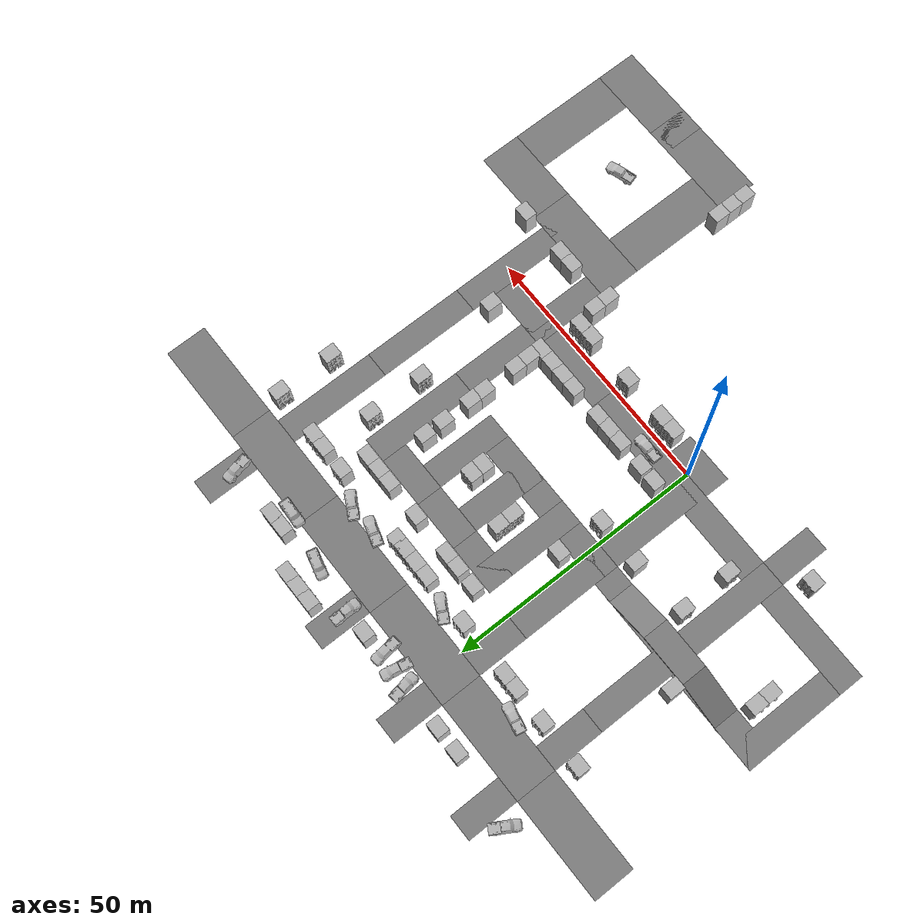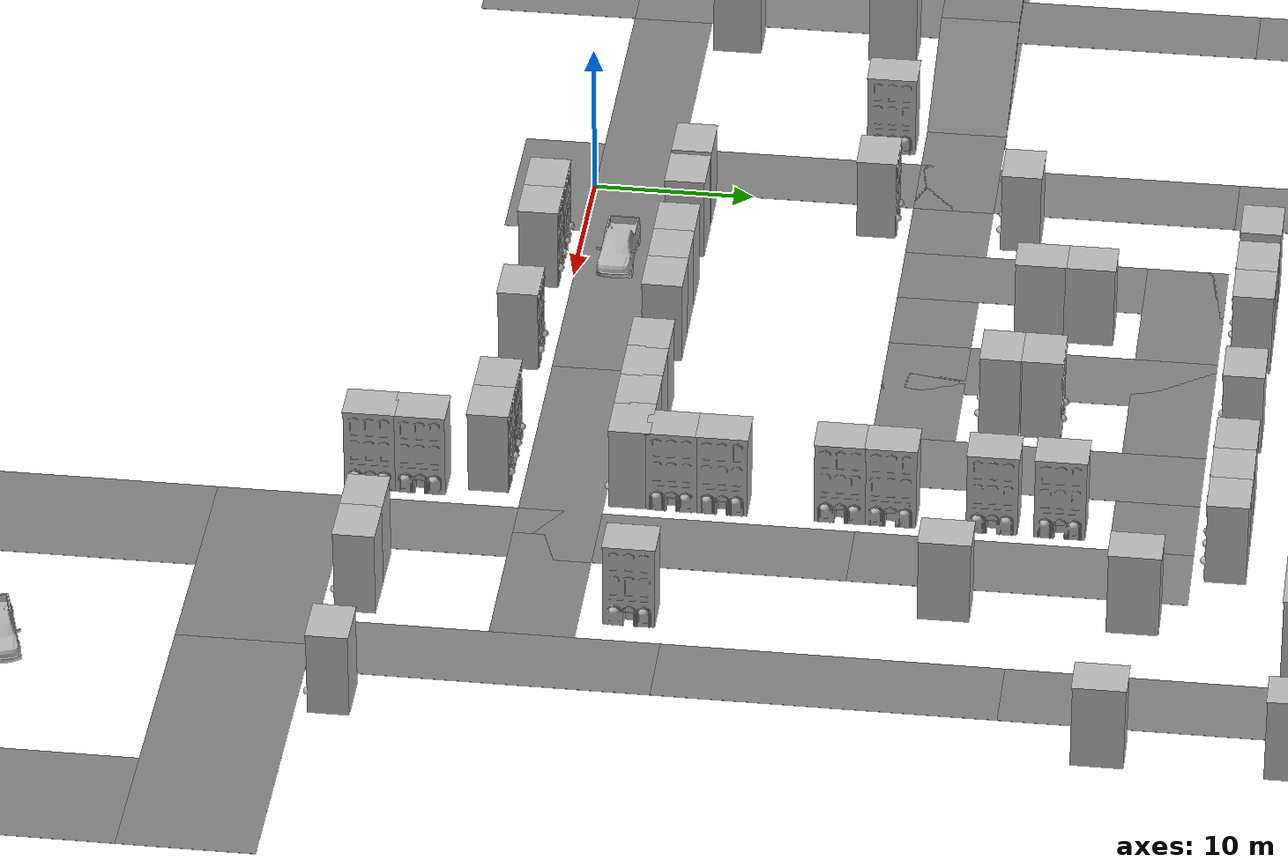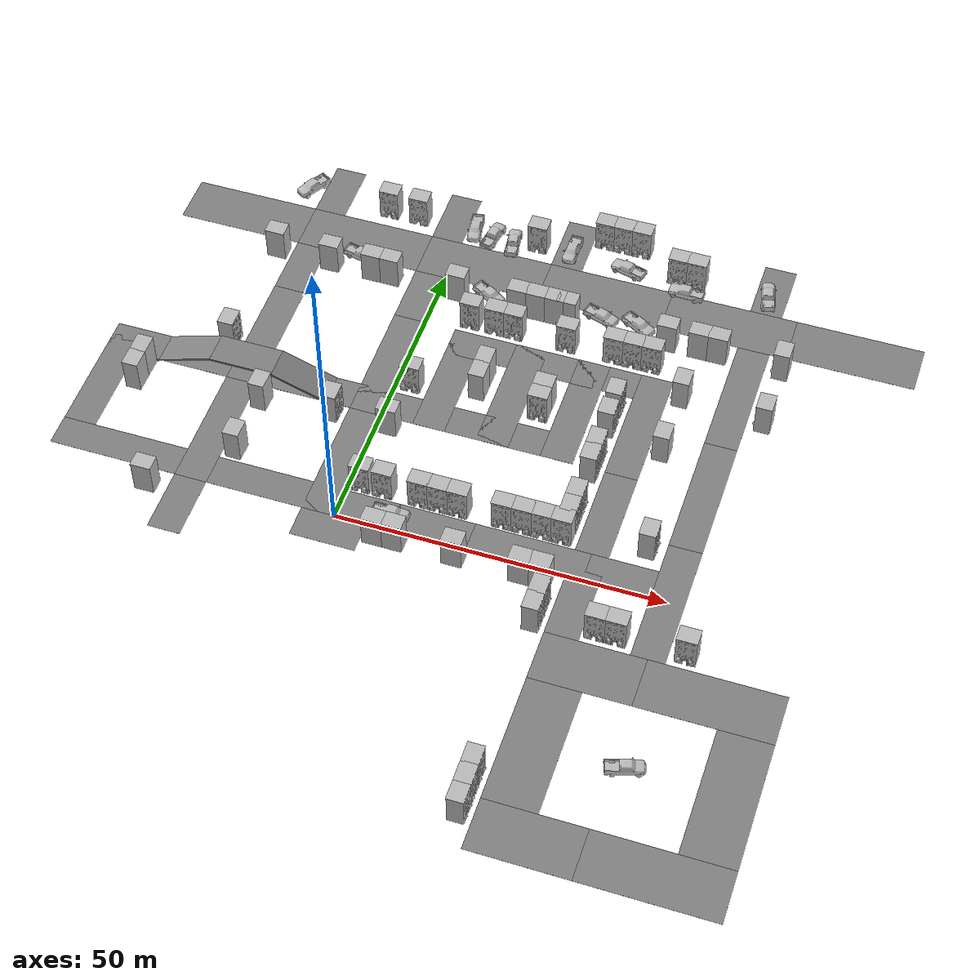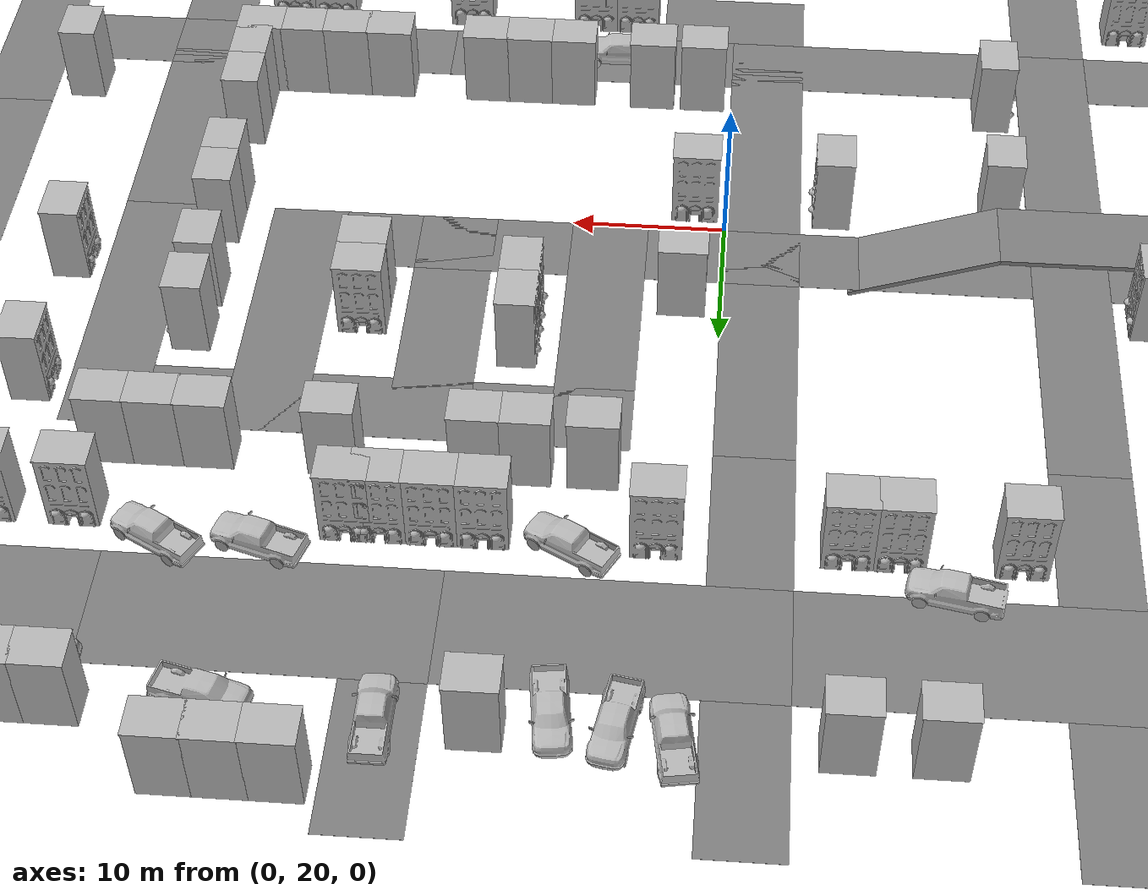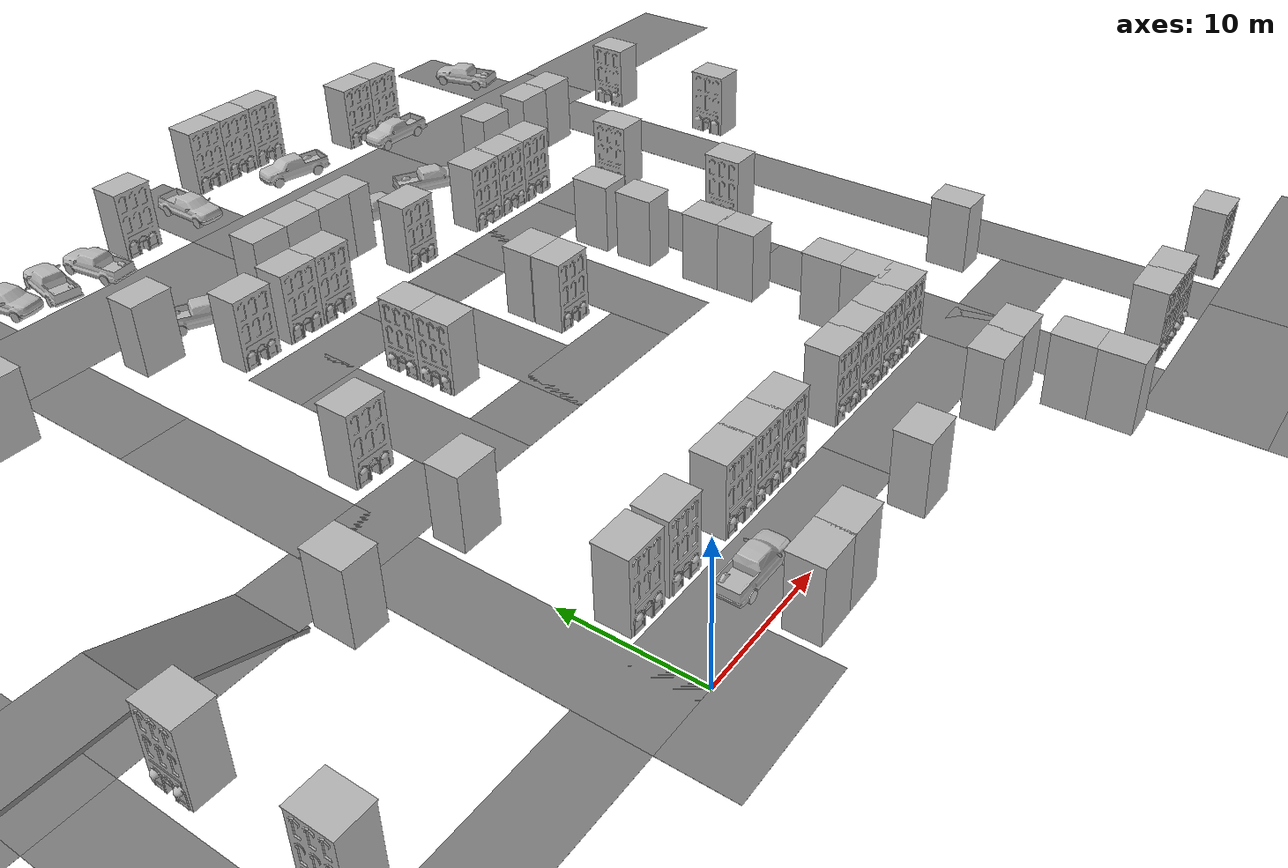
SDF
<sdf version="1.9">
 <world name="sim_town">
  <physics name="1ms" type="ignore">
   <max_step_size>0.002</max_step_size>
   <real_time_factor>1.0</real_time_factor>
  </physics>
  <plugin filename="gz-sim-physics-system" name="gz::sim::systems::Physics"/>
  <plugin filename="gz-sim-user-commands-system" name="gz::sim::systems::UserCommands"/>
  <plugin filename="gz-sim-scene-broadcaster-system" name="gz::sim::systems::SceneBroadcaster"/>
  <plugin filename="gz-sim-sensors-system" name="gz::sim::systems::Sensors">
   <render_engine>ogre2</render_engine>
  </plugin>
  <plugin filename="gz-sim-imu-system" name="gz::sim::systems::Imu"/>
  <scene><ambient>1.0 1.0 1.0</ambient><background>0.8 0.8 0.8</background></scene>
  <light type="directional" name="sun">
   <pose>0 0 10 0 0 0</pose>
   <diffuse>0.8 0.8 0.8 1</diffuse>
   <specular>0.8 0.8 0.8 1</specular>
   <attenuation>
    <range>1000</range>
    <constant>0.9</constant>
    <linear>0.01</linear>
    <quadratic>0.001</quadratic>
   </attenuation>
   <direction>-0.5 0.1 -0.9</direction>
  </light>
  <include><name>pickup</name><uri>model://pickup</uri><pose>8 2.5 0.025 0 0 0</pose></include>
  <include>
   <name>asphalt_road_narrow</name>
   <uri>model://asphalt_road_narrow</uri>
   <pose>10 2.5 0 0 0 0</pose>
  </include>
  <include>
   <name>asphalt_road_narrow_0</name>
   <uri>model://asphalt_road_narrow</uri>
   <pose>30 2.5 0 0 0 0</pose>
  </include>
  <include>
   <name>asphalt_road_narrow_1</name>
   <uri>model://asphalt_road_narrow</uri>
   <pose>37.5 10 0 0 0 1.5707900000000004</pose>
  </include>
  <include>
   <name>asphalt_road_narrow_2</name>
   <uri>model://asphalt_road_narrow</uri>
   <pose>37.5 30 0 0 0 1.5707900000000004</pose>
  </include>
  <include>
   <name>asphalt_road_narrow_3</name>
   <uri>model://asphalt_road_narrow</uri>
   <pose>27.5 30 0 0 0 1.5707900000000004</pose>
  </include>
  <include>
   <name>asphalt_road_narrow_4</name>
   <uri>model://asphalt_road_narrow</uri>
   <pose>17.5 30 0 0 0 1.5707900000000004</pose>
  </include>
  <include>
   <name>asphalt_road_narrow_5</name>
   <uri>model://asphalt_road_narrow</uri>
   <pose>7.5 30 0 0 0 1.5707900000000004</pose>
  </include>
  <include>
   <name>asphalt_road_narrow_6</name>
   <uri>model://asphalt_road_narrow</uri>
   <pose>-2.5 30 0 0 0 1.5707900000000004</pose>
  </include>
  <include>
   <name>asphalt_road_narrow_7</name>
   <uri>model://asphalt_road_narrow</uri>
   <pose>-2.5 10 0 0 0 1.5707900000000004</pose>
  </include>
  <include>
   <name>asphalt_road_narrow_8</name>
   <uri>model://asphalt_road_narrow</uri>
   <pose>-10 22.5 0 0 0 0</pose>
  </include>
  <include>
   <name>asphalt_road_narrow_9</name>
   <uri>model://asphalt_road_narrow</uri>
   <pose>-35 22.5 0 0 0 0</pose>
  </include>
  <include>
   <name>asphalt_road_narrow_10</name>
   <uri>model://asphalt_road_narrow</uri>
   <pose>-42.5 15 0 0 0 1.5707900000000004</pose>
  </include>
  <include>
   <name>asphalt_road_narrow_11</name>
   <uri>model://asphalt_road_narrow</uri>
   <pose>-35 2.5 0 0 0 0</pose>
  </include>
  <include>
   <name>asphalt_road_narrow_12</name>
   <uri>model://asphalt_road_narrow</uri>
   <pose>-10 2.5 0 0 0 0</pose>
  </include>
  <include>
   <name>asphalt_road_narrow_13</name>
   <uri>model://asphalt_road_narrow</uri>
   <pose>-22.5 10 0 0 0 1.5707900000000004</pose>
  </include>
  <include>
   <name>asphalt_road_narrow_14</name>
   <uri>model://asphalt_road_narrow</uri>
   <pose>-22.5 30 0 0 0 1.5707900000000004</pose>
  </include>
  <include>
   <name>asphalt_road_narrow_15</name>
   <uri>model://asphalt_road_narrow</uri>
   <pose>50 40 0 0 0 1.5707900000000001</pose>
  </include>
  <include>
   <name>asphalt_road_narrow_16</name>
   <uri>model://asphalt_road_narrow</uri>
   <pose>50 20 0 0 0 1.5707900000000004</pose>
  </include>
  <include>
   <name>asphalt_road_narrow_17</name>
   <uri>model://asphalt_road_narrow</uri>
   <pose>50 0 0 0 0 1.5707900000000001</pose>
  </include>
  <include>
   <name>asphalt_road_short</name>
   <uri>model://asphalt_road_short</uri>
   <pose>30 37.5 0 0 0 0</pose>
  </include>
  <include>
   <name>asphalt_road_short_0</name>
   <uri>model://asphalt_road_short</uri>
   <pose>20 22.5 0 0 0 0</pose>
  </include>
  <include>
   <name>asphalt_road_short_0ext1</name>
   <uri>model://asphalt_road_short</uri>
   <pose>15 22.5 0 0 0 0</pose>
  </include>
  <include>
   <name>asphalt_road_short_1</name>
   <uri>model://asphalt_road_short</uri>
   <pose>10 37.5 0 0 0 0</pose>
  </include>
  <include>
   <name>asphalt_road_short_2</name>
   <uri>model://asphalt_road_short</uri>
   <pose>0 22.5 0 0 0 0</pose>
  </include>
  <include>
   <name>asphalt_road_short_3</name>
   <uri>model://asphalt_road_short</uri>
   <pose>-2.5 45 0 0 0 1.5707900000000004</pose>
  </include>
  <include>
   <name>asphalt_road_short_4</name>
   <uri>model://asphalt_road_short</uri>
   <pose>-22.5 45 0 0 0 1.5707900000000004</pose>
  </include>
  <include>
   <name>asphalt_road_short_5</name>
   <uri>model://asphalt_road_short</uri>
   <pose>0 -2.5 0 0 0 0</pose>
  </include>
  <include>
   <name>asphalt_road_short_6</name>
   <uri>model://asphalt_road_short</uri>
   <pose>-22.5 63 0 0 0 1.5707900000000001</pose>
  </include>
  <include>
   <name>asphalt_road_short_7</name>
   <uri>model://asphalt_road_short</uri>
   <pose>-2.5 63 0 0 0 1.5707900000000001</pose>
  </include>
  <include>
   <name>asphalt_road_short_8</name>
   <uri>model://asphalt_road_short</uri>
   <pose>17.5 63 0 0 0 1.5707900000000001</pose>
  </include>
  <include>
   <name>asphalt_road_short_9</name>
   <uri>model://asphalt_road_short</uri>
   <pose>37.5 -5 0 0 0 1.5707900000000001</pose>
  </include>
  <include>
   <name>asphalt_road_short_10</name>
   <uri>model://asphalt_road_short</uri>
   <pose>20 37.5 0 0 0 0</pose>
  </include>
  <include>
   <name>asphalt_road_short_11</name>
   <uri>model://asphalt_road_short</uri>
   <pose>-22.5 -5 0 0 0 1.5707900000000001</pose>
  </include>
  <include>
   <name>asphalt_road_short_12</name>
   <uri>model://asphalt_road_short</uri>
   <pose>50 63 0 0 0 1.5707900000000004</pose>
  </include>
  <include>
   <name>asphalt_road_short_13</name>
   <uri>model://asphalt_road_short</uri>
   <pose>42.5 2.5 0 0 0 0</pose>
  </include>
  <include>
   <name>asphalt_road_wide</name>
   <uri>model://asphalt_road_wide</uri>
   <pose>-15 54 0 0 0 0</pose>
  </include>
  <include>
   <name>asphalt_road_wide_0</name>
   <uri>model://asphalt_road_wide</uri>
   <pose>5 54 0 0 0 0</pose>
  </include>
  <include>
   <name>asphalt_road_wide_1</name>
   <uri>model://asphalt_road_wide</uri>
   <pose>25 54 0 0 0 0</pose>
  </include>
  <include>
   <name>asphalt_road_wide_2</name>
   <uri>model://asphalt_road_wide</uri>
   <pose>45 54 0 0 0 0</pose>
  </include>
  <include>
   <name>asphalt_road_wide_3</name>
   <uri>model://asphalt_road_wide</uri>
   <pose>-35 54 0 0 0 0</pose>
  </include>
  <include>
   <name>asphalt_road_wide_4</name>
   <uri>model://asphalt_road_wide</uri>
   <pose>65 54 0 0 0 0</pose>
  </include>
  <include>
   <name>asphalt_road_wide_5</name>
   <uri>model://asphalt_road_wide</uri>
   <pose>45 -14 0 0 0 0</pose>
  </include>
  <include>
   <name>asphalt_road_wide_6</name>
   <uri>model://asphalt_road_wide</uri>
   <pose>39 -28 0 0 0 1.5707900000000004</pose>
  </include>
  <include>
   <name>asphalt_road_wide_7</name>
   <uri>model://asphalt_road_wide</uri>
   <pose>45 -42 0 0 0 0</pose>
  </include>
  <include>
   <name>asphalt_road_wide_8</name>
   <uri>model://asphalt_road_wide</uri>
   <pose>60 -42 0 0 0 0</pose>
  </include>
  <include>
   <name>asphalt_road_wide_9</name>
   <uri>model://asphalt_road_wide</uri>
   <pose>60 -14 0 0 0 0</pose>
  </include>
  <include>
   <name>asphalt_road_wide_10</name>
   <uri>model://asphalt_road_wide</uri>
   <pose>66 -28 0 0 0 1.5707900000000004</pose>
  </include>
  <include>
   <name>asphalt_road_thick</name>
   <uri>model://asphalt_road_thick</uri>
   <pose>-22.5 22.5 3 0 0 0</pose>
  </include>
  <include>
   <name>asphalt_road_thick_0</name>
   <uri>model://asphalt_road_thick</uri>
   <pose>-12.859999999999999 22.5 1.302 0 0.34900000000000009 0</pose>
  </include>
  <include>
   <name>asphalt_road_thick_1</name>
   <uri>model://asphalt_road_thick</uri>
   <pose>-32.140000000000001 22.5 1.302 0 -0.34900000000000009 0</pose>
  </include>
  <include><name>office_building</name><uri>model://office_building</uri><pose>2 6.5 0 0 0 0</pose></include>
  <include>
   <name>office_building_0</name>
   <uri>model://office_building</uri>
   <pose>5.5 6.5 0 0 0 0</pose>
  </include>
  <include><name>office_building_1</name><uri>model://office_building</uri><pose>11 6.5 0 0 0 0</pose></include>
  <include><name>office_building_2</name><uri>model://office_building</uri><pose>14 6.5 0 0 0 0</pose></include>
  <include><name>office_building_3</name><uri>model://office_building</uri><pose>17 6.5 0 0 0 0</pose></include>
  <include>
   <name>office_building_4</name>
   <uri>model://office_building</uri>
   <pose>32.685000000000002 6.5 0 0 0 0</pose>
  </include>
  <include>
   <name>office_building_5</name>
   <uri>model://office_building</uri>
   <pose>26.699999999999999 6.5 0 0 0 0</pose>
  </include>
  <include>
   <name>office_building_6</name>
   <uri>model://office_building</uri>
   <pose>23.699999999999999 6.5 0 0 0 0</pose>
  </include>
  <include>
   <name>office_building_7</name>
   <uri>model://office_building</uri>
   <pose>7 -2 0 0 0 3.1415899999999999</pose>
  </include>
  <include>
   <name>office_building_8</name>
   <uri>model://office_building</uri>
   <pose>10 -2 0 0 0 3.1415899999999999</pose>
  </include>
  <include>
   <name>office_building_9</name>
   <uri>model://office_building</uri>
   <pose>19 -2 0 0 0 3.1415899999999999</pose>
  </include>
  <include>
   <name>office_building_10</name>
   <uri>model://office_building</uri>
   <pose>32 -2 0 0 0 3.1415899999999999</pose>
  </include>
  <include>
   <name>office_building_11</name>
   <uri>model://office_building</uri>
   <pose>29 -2 0 0 0 3.1415899999999999</pose>
  </include>
  <include><name>office_building_12</name><uri>model://office_building</uri><pose>42 -8 0 0 0 0</pose></include>
  <include><name>office_building_13</name><uri>model://office_building</uri><pose>45 -8 0 0 0 0</pose></include>
  <include>
   <name>office_building_14</name>
   <uri>model://office_building</uri>
   <pose>33 -6 0 0 0 1.5707900000000004</pose>
  </include>
  <include>
   <name>office_building_15</name>
   <uri>model://office_building</uri>
   <pose>33 -9 0 0 0 1.5707900000000004</pose>
  </include>
  <include>
   <name>office_building_16</name>
   <uri>model://office_building</uri>
   <pose>33 32 0 0 0 1.5707900000000004</pose>
  </include>
  <include>
   <name>office_building_17</name>
   <uri>model://office_building</uri>
   <pose>33 28 0 0 0 1.5707900000000004</pose>
  </include>
  <include>
   <name>office_building_18</name>
   <uri>model://office_building</uri>
   <pose>33 22 0 0 0 1.5707900000000004</pose>
  </include>
  <include>
   <name>office_building_19</name>
   <uri>model://office_building</uri>
   <pose>33 19 0 0 0 1.5707900000000004</pose>
  </include>
  <include>
   <name>office_building_20</name>
   <uri>model://office_building</uri>
   <pose>33 12 0 0 0 1.5707900000000004</pose>
  </include>
  <include>
   <name>office_building_21</name>
   <uri>model://office_building</uri>
   <pose>33 9 0 0 0 1.5707900000000004</pose>
  </include>
  <include>
   <name>office_building_22</name>
   <uri>model://office_building</uri>
   <pose>22.5 27.5 0 0 0 0</pose>
  </include>
  <include>
   <name>office_building_23</name>
   <uri>model://office_building</uri>
   <pose>22.5 30 0 0 0 3.1415899999999999</pose>
  </include>
  <include>
   <name>office_building_24</name>
   <uri>model://office_building</uri>
   <pose>22.5 42 0 0 0 0</pose>
  </include>
  <include>
   <name>office_building_25</name>
   <uri>model://office_building</uri>
   <pose>12.5 32 0 0 0 -1.5707900000000004</pose>
  </include>
  <include>
   <name>office_building_26</name>
   <uri>model://office_building</uri>
   <pose>12.5 29 0 0 0 -1.5707900000000004</pose>
  </include>
  <include>
   <name>office_building_28</name>
   <uri>model://office_building</uri>
   <pose>2.5 27 0 0 0 0</pose>
  </include>
  <include>
   <name>office_building_29</name>
   <uri>model://office_building</uri>
   <pose>29.699999999999999 6.5 0 0 0 0</pose>
  </include>
  <include>
   <name>office_building_30</name>
   <uri>model://office_building</uri>
   <pose>-37.5 18 0 0 0 -1.5707900000000004</pose>
  </include>
  <include>
   <name>office_building_31</name>
   <uri>model://office_building</uri>
   <pose>-37.5 15 0 0 0 -1.5707900000000004</pose>
  </include>
  <include>
   <name>office_building_32</name>
   <uri>model://office_building</uri>
   <pose>2 18 0 0 0 3.1415899999999999</pose>
  </include>
  <include>
   <name>office_building_33</name>
   <uri>model://office_building</uri>
   <pose>-18 17 0 0 0 -1.5907900000000001</pose>
  </include>
  <include>
   <name>office_building_34</name>
   <uri>model://office_building</uri>
   <pose>33 -35 0 0 0 1.5707900000000004</pose>
  </include>
  <include>
   <name>office_building_35</name>
   <uri>model://office_building</uri>
   <pose>33 -38 0 0 0 1.5707900000000004</pose>
  </include>
  <include>
   <name>office_building_36</name>
   <uri>model://office_building</uri>
   <pose>33 -41 0 0 0 1.5707900000000004</pose>
  </include>
  <include><name>office_building_37</name><uri>model://office_building</uri><pose>55 -8 0 0 0 0</pose></include>
  <include>
   <name>office_building_38</name>
   <uri>model://office_building</uri>
   <pose>-18 47 0 0 0 3.1415899999999999</pose>
  </include>
  <include>
   <name>office_building_39</name>
   <uri>model://office_building</uri>
   <pose>-27 47 0.20000000000000001 0 0 3.1415899999999999</pose>
  </include>
  <include>
   <name>office_building_40</name>
   <uri>model://office_building</uri>
   <pose>-18 7 0 0 0 -1.5707900000000001</pose>
  </include>
  <include>
   <name>office_building_41</name>
   <uri>model://office_building</uri>
   <pose>-28 -3 0 0 0 3.1415899999999999</pose>
  </include>
  <include>
   <name>office_building_42</name>
   <uri>model://office_building</uri>
   <pose>-8 47 0 0 0 3.1415899999999999</pose>
  </include>
  <include>
   <name>office_building_43</name>
   <uri>model://office_building</uri>
   <pose>-11 47 0 0 0 3.1415899999999999</pose>
  </include>
  <include><name>office_building_44</name><uri>model://office_building</uri><pose>-8 61 0 0 0 0</pose></include>
  <include>
   <name>office_building_45</name>
   <uri>model://office_building</uri>
   <pose>-13 61 0 0 0 0</pose>
  </include>
  <include><name>office_building_46</name><uri>model://office_building</uri><pose>12 61 0 0 0 0</pose></include>
  <include>
   <name>office_building_47</name>
   <uri>model://office_building</uri>
   <pose>3 47 0 0 0 3.1415899999999999</pose>
  </include>
  <include>
   <name>office_building_48</name>
   <uri>model://office_building</uri>
   <pose>13 47 0 0 0 3.1415899999999999</pose>
  </include>
  <include>
   <name>office_building_49</name>
   <uri>model://office_building</uri>
   <pose>16 47 0 0 0 3.1415899999999999</pose>
  </include>
  <include>
   <name>office_building_50</name>
   <uri>model://office_building</uri>
   <pose>19 47 0 0 0 3.1415899999999999</pose>
  </include>
  <include>
   <name>office_building_51</name>
   <uri>model://office_building</uri>
   <pose>21 47 0 0 0 3.1415899999999999</pose>
  </include>
  <include><name>office_building_52</name><uri>model://office_building</uri><pose>22 65 0 0 0 0</pose></include>
  <include><name>office_building_53</name><uri>model://office_building</uri><pose>25 65 0 0 0 0</pose></include>
  <include><name>office_building_55</name><uri>model://office_building</uri><pose>35 61 0 0 0 0</pose></include>
  <include><name>office_building_56</name><uri>model://office_building</uri><pose>38 61 0 0 0 0</pose></include>
  <include><name>office_building_54</name><uri>model://office_building</uri><pose>28 65 0 0 0 0</pose></include>
  <include>
   <name>office_building_57</name>
   <uri>model://office_building</uri>
   <pose>37 47 0 0 0 3.1415899999999999</pose>
  </include>
  <include>
   <name>office_building_58</name>
   <uri>model://office_building</uri>
   <pose>45 47 0 0 0 3.1415899999999999</pose>
  </include>
  <include>
   <name>office_building_59</name>
   <uri>model://office_building</uri>
   <pose>42 47 0 0 0 3.1415899999999999</pose>
  </include>
  <include>
   <name>office_building_60</name>
   <uri>model://office_building</uri>
   <pose>55 47 0 0 0 -1.5707900000000004</pose>
  </include>
  <include>
   <name>office_building_61</name>
   <uri>model://office_building</uri>
   <pose>55 36 0 0 0 -1.5707900000000004</pose>
  </include>
  <include>
   <name>office_building_62</name>
   <uri>model://office_building</uri>
   <pose>45 8 0.20000000000000001 0 0 1.5707900000000004</pose>
  </include>
  <include><name>office_building_63</name><uri>model://office_building</uri><pose>30 42 0 0 0 0</pose></include>
  <include><name>office_building_64</name><uri>model://office_building</uri><pose>33 42 0 0 0 0</pose></include>
  <include><name>office_building_65</name><uri>model://office_building</uri><pose>36 42 0 0 0 0</pose></include>
  <include>
   <name>office_building_66</name>
   <uri>model://office_building</uri>
   <pose>42 37 0 0 0 -1.5707900000000004</pose>
  </include>
  <include>
   <name>office_building_67</name>
   <uri>model://office_building</uri>
   <pose>42 26 0 0 0 -1.5707900000000004</pose>
  </include>
  <include><name>office_building_68</name><uri>model://office_building</uri><pose>14 42 0 0 0 0</pose></include>
  <include><name>office_building_69</name><uri>model://office_building</uri><pose>11 42 0 0 0 0</pose></include>
  <include><name>office_building_70</name><uri>model://office_building</uri><pose>7 42 0 0 0 0</pose></include>
  <include>
   <name>office_building_71</name>
   <uri>model://office_building</uri>
   <pose>-7 18 0.20000000000000001 0 0 1.5707900000000004</pose>
  </include>
  <include>
   <name>office_building_72</name>
   <uri>model://office_building</uri>
   <pose>-27 27 0.20000000000000001 0 0 1.5707900000000004</pose>
  </include>
  <include>
   <name>pickup_with_wheels_2</name>
   <uri>model://pickup_with_wheels</uri>
   <pose>-14 50 0 0 0 -0.20000000000000018</pose>
  </include>
  <include>
   <name>pickup_with_wheels_3</name>
   <uri>model://pickup_with_wheels</uri>
   <pose>8 60 0 0 0 1.7</pose>
  </include>
  <include>
   <name>pickup_with_wheels_4</name>
   <uri>model://pickup_with_wheels</uri>
   <pose>4.5 60.5 0 0 0 1.3999999999999997</pose>
  </include>
  <include>
   <name>pickup_with_wheels_5</name>
   <uri>model://pickup_with_wheels</uri>
   <pose>1.3 61 0 0 0 -1.3999999999999997</pose>
  </include>
  <include>
   <name>pickup_with_wheels_6</name>
   <uri>model://pickup_with_wheels</uri>
   <pose>8 48 0 0 0 -0.49999999999999989</pose>
  </include>
  <include>
   <name>pickup_with_wheels_7</name>
   <uri>model://pickup_with_wheels</uri>
   <pose>17.5 61 0.20000000000000001 0 0 -1.5707900000000004</pose>
  </include>
  <include>
   <name>pickup_with_wheels_8</name>
   <uri>model://pickup_with_wheels</uri>
   <pose>27 60 0 0 0 2.8999999999999999</pose>
  </include>
  <include>
   <name>pickup_with_wheels_9</name>
   <uri>model://pickup_with_wheels</uri>
   <pose>37 58 0 0 0 3.1000000000000001</pose>
  </include>
  <include>
   <name>pickup_with_wheels_10</name>
   <uri>model://pickup_with_wheels</uri>
   <pose>26 49 0 0 0 -0.30000000000000032</pose>
  </include>
  <include>
   <name>pickup_with_wheels_11</name>
   <uri>model://pickup_with_wheels</uri>
   <pose>32 49 0 0 0 -0.49999999999999994</pose>
  </include>
  <include>
   <name>pickup_with_wheels_12</name>
   <uri>model://pickup_with_wheels</uri>
   <pose>49.5 61 0.20000000000000001 0 0 1.7999999999999998</pose>
  </include>
  <include>
   <name>pickup_with_wheels_14</name>
   <uri>model://pickup_with_wheels</uri>
   <pose>-27 62 0 0 0 -2.1000000000000001</pose>
  </include>
  <include>
   <name>pickup_with_wheels_15</name>
   <uri>model://pickup_with_wheels</uri>
   <pose>52 -28 0 0 0 0.30000000000000032</pose>
  </include>
 </world>
</sdf>

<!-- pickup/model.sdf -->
<sdf version="1.6">
  <model name="pickup">
    <link name="base_link">
      <inertial>
        <pose>0 0 0 0 0 0</pose>
        <mass>2300.0</mass>
        <inertia>
          <ixx>54.0</ixx>
          <ixy>0</ixy>
          <ixz>0</ixz>
          <iyy>252.0</iyy>
          <iyz>0</iyz>
          <izz>252.0</izz>
        </inertia>
      </inertial>
      <collision name="collision">
        <pose>0 0 0 0 0 -1.57079632679</pose>
        <geometry>
          <mesh>
            <uri>model://pickup/meshes/pickup_no_wheels.dae</uri>
          </mesh>
        </geometry>
      </collision>
      <visual name="visual">
        <pose>0 0 0 0 0 -1.57079632679</pose>
        <geometry>
          <mesh>
            <uri>model://pickup/meshes/pickup_no_wheels.dae</uri>
          </mesh>
        </geometry>
      </visual>
    </link>

    <joint name="servo_c" type="revolute">
      <parent>base_link</parent>
      <child>FrontCenterWheelSteering</child>
      <pose relative_to="base_link">1.78 0 0.4 0 0 0</pose>
      <axis>
        <xyz>0 0 1</xyz>
        <limit>
          <lower>-1.57079</lower>
          <upper>1.57079</upper>
          <velocity>10.0</velocity>
          <effort>500.0</effort>
        </limit>
        <use_parent_model_frame>1</use_parent_model_frame>
      </axis>
    </joint>
    <link name="FrontCenterWheelSteering">
      <pose relative_to="servo_c">0 0 0 0 0 0</pose>
      <inertial>
        <mass>0.005</mass>
        <inertia>
          <ixx>0.0000018</ixx>
          <iyy>0.0000018</iyy>
          <izz>0.0000018</izz>
        </inertia>
      </inertial>
    </link>
    <joint name="FrontCenterWheelJoint" type="revolute">
      <parent>FrontCenterWheelSteering</parent>
      <child>FrontCenterWheel</child>
      <pose relative_to="servo_c" degrees="true">0 0 0 -90 0 0</pose>
      <axis>
        <xyz>0 1 0</xyz>
        <limit>
          <lower>-1.79769e+308</lower>
          <upper>1.79769e+308</upper>
          <velocity>50.0</velocity>
        </limit>
        <dynamics>
          <spring_reference>0</spring_reference>
          <spring_stiffness>0</spring_stiffness>
        </dynamics>
        <use_parent_model_frame>1</use_parent_model_frame>
      </axis>
    </joint>
    <link name="FrontCenterWheel">
      <pose relative_to="FrontCenterWheelJoint">0 0 0 0 0 0</pose>
      <inertial>
        <mass>.05</mass>
        <inertia>
          <ixx>0.00003331</ixx>
          <ixy>0</ixy>
          <ixz>0</ixz>
          <iyy>0.0000204</iyy>
          <iyz>0</iyz>
          <izz>0.0000204</izz>
        </inertia>
      </inertial>
      <gravity>true</gravity>
      <velocity_decay/>
      <collision name="FrontCenterWheelCollision">
        <pose relative_to="FrontCenterWheelJoint">0 0.0 0 0 0 0</pose>
        <geometry>
          <cylinder>
            <length>0.3</length>
            <radius>0.4</radius>
          </cylinder>
        </geometry>
        <surface>
          <contact>
            <ode>
              <max_vel>100.0</max_vel>
              <min_depth>0.001</min_depth>
            </ode>
          </contact>
          <friction>
            <ode>
              <mu>1.0</mu>
              <mu2>1.0</mu2>
              <fdir1>1 0 0</fdir1>
            </ode>
          </friction>
        </surface>
      </collision>
    </link>

    <joint name="servo_0" type="revolute">
      <parent>base_link</parent>
      <child>FrontLeftWheelSteering</child>
      <pose relative_to="base_link">1.78 0.95 0.4 0 0 0</pose>
      <axis>
        <xyz>0 0 1</xyz>
        <limit>
          <lower>-0.0</lower>
          <upper>0.0</upper>
          <velocity>0.0</velocity>
          <effort>0.0</effort>
        </limit>
        <use_parent_model_frame>1</use_parent_model_frame>
      </axis>
    </joint>
    <joint name="servo_1" type="revolute">
      <parent>base_link</parent>
      <child>FrontRightWheelSteering</child>
      <pose relative_to="base_link">1.78 -0.95 0.4 0 0 0</pose>
      <axis>
        <xyz>0 0 1</xyz>
        <limit>
          <lower>-0.0</lower>
          <upper>0.0</upper>
          <velocity>0.0</velocity>
          <effort>0.0</effort>
        </limit>
        <use_parent_model_frame>1</use_parent_model_frame>
      </axis>
    </joint>

    <link name="FrontLeftWheelSteering">
      <pose relative_to="servo_0">0 0 0 0 0 0</pose>
      <inertial>
        <mass>0.005</mass>
        <inertia>
          <ixx>0.0000018</ixx>
          <iyy>0.0000018</iyy>
          <izz>0.0000018</izz>
        </inertia>
      </inertial>
    </link>
    <link name="FrontRightWheelSteering">
      <pose relative_to="servo_1">0 0 0 0 0 0</pose>
      <inertial>
        <mass>0.005</mass>
        <inertia>
          <ixx>0.0000018</ixx>
          <iyy>0.0000018</iyy>
          <izz>0.0000018</izz>
        </inertia>
      </inertial>
    </link>

    <joint name="FrontLeftWheelJoint" type="revolute">
      <parent>FrontLeftWheelSteering</parent>
      <child>FrontLeftWheel</child>
      <pose relative_to="servo_0" degrees="true">0 0 0 -90 0 0</pose>
      <axis>
        <xyz>0 1 0</xyz>
        <limit>
          <lower>-1.79769e+308</lower>
          <upper>1.79769e+308</upper>
          <velocity>50.0</velocity>
        </limit>
        <dynamics>
          <spring_reference>0</spring_reference>
          <spring_stiffness>0</spring_stiffness>
        </dynamics>
        <use_parent_model_frame>1</use_parent_model_frame>
      </axis>
    </joint>
    <joint name="FrontRightWheelJoint" type="revolute">
      <parent>FrontRightWheelSteering</parent>
      <child>FrontRightWheel</child>
      <pose relative_to="servo_1" degrees="true">0 0 0 90 0 0</pose>
      <axis>
        <xyz>0 1 0</xyz>
        <limit>
          <lower>-1.79769e+308</lower>
          <upper>1.79769e+308</upper>
          <velocity>50.0</velocity>
        </limit>
        <dynamics>
          <spring_reference>0</spring_reference>
          <spring_stiffness>0</spring_stiffness>
        </dynamics>
        <use_parent_model_frame>1</use_parent_model_frame>
      </axis>
    </joint>

    <joint name="RearLeftWheelJoint" type="revolute">
      <parent>base_link</parent>
      <child>RearLeftWheel</child>
      <pose relative_to="base_link" degrees="true">-1.78 0.95 0.4 -90 0 0</pose>
      <axis>
        <xyz>0 1 0</xyz>
        <limit>
          <lower>-1.79769e+308</lower>
          <upper>1.79769e+308</upper>
          <velocity>50.0</velocity>
        </limit>
        <dynamics>
          <spring_reference>0</spring_reference>
          <spring_stiffness>0</spring_stiffness>
        </dynamics>
        <use_parent_model_frame>1</use_parent_model_frame>
      </axis>
    </joint>
    <joint name="RearRightWheelJoint" type="revolute">
      <parent>base_link</parent>
      <child>RearRightWheel</child>
      <pose relative_to="base_link" degrees="true">-1.78 -0.95 0.4 90 0 0</pose>
      <axis>
        <xyz>0 1 0</xyz>
        <limit>
          <lower>-1.79769e+308</lower>
          <upper>1.79769e+308</upper>
          <velocity>50.0</velocity>
        </limit>
        <dynamics>
          <spring_reference>0</spring_reference>
          <spring_stiffness>0</spring_stiffness>
        </dynamics>
        <use_parent_model_frame>1</use_parent_model_frame>
      </axis>
    </joint>

    <link name="FrontLeftWheel">
      <pose relative_to="FrontLeftWheelJoint">0 0 0 0 0 0</pose>
      <inertial>
        <mass>.05</mass>
        <inertia>
          <ixx>0.00003331</ixx>
          <ixy>0</ixy>
          <ixz>0</ixz>
          <iyy>0.0000204</iyy>
          <iyz>0</iyz>
          <izz>0.0000204</izz>
        </inertia>
      </inertial>
      <gravity>true</gravity>
      <velocity_decay/>
      <visual name="FrontLeftWheelVisual">
        <pose relative_to="FrontLeftWheelJoint">0 0.0 0 0 0 0</pose>
        <geometry>
          <cylinder>
            <length>0.3</length>
            <radius>0.4</radius>
          </cylinder>
        </geometry>
        <material>
          <ambient>0.8 0.8 0.8 1</ambient>
          <diffuse>0.8 0.8 0.8 1</diffuse>
          <specular>0 0 0 0</specular>
          <pbr>
            <metal>
              <albedo_map>materials/textures/tire4.jpg</albedo_map>
            </metal>
          </pbr>
        </material>
      </visual>
      <collision name="FrontLeftWheelCollision">
        <pose relative_to="FrontLeftWheelJoint">0 0.0 0 0 0 0</pose>
        <geometry>
          <cylinder>
            <length>0.3</length>
            <radius>0.4</radius>
          </cylinder>
        </geometry>
        <surface>
          <contact>
            <ode>
              <max_vel>100.0</max_vel>
              <min_depth>0.001</min_depth>
            </ode>
          </contact>
          <friction>
            <ode>
              <mu>1.0</mu>
              <mu2>1.0</mu2>
              <fdir1>1 0 0</fdir1>
            </ode>
          </friction>
        </surface>
      </collision>
    </link>

    <link name="FrontRightWheel">
      <pose relative_to="FrontRightWheelJoint">0 0 0 0 0 0</pose>
      <inertial>
        <mass>.05</mass>
        <inertia>
          <ixx>0.00003331</ixx>
          <ixy>0</ixy>
          <ixz>0</ixz>
          <iyy>0.0000204</iyy>
          <iyz>0</iyz>
          <izz>0.0000204</izz>
        </inertia>
      </inertial>
      <gravity>true</gravity>
      <velocity_decay/>
      <visual name="FrontRightWheelVisual">
        <pose relative_to="FrontRightWheelJoint">0 -0.0 0 0 0 0</pose>
        <geometry>
          <cylinder>
            <length>0.3</length>
            <radius>0.4</radius>
          </cylinder>
        </geometry>
        <material>
          <ambient>0.8 0.8 0.8 1</ambient>
          <diffuse>0.8 0.8 0.8 1</diffuse>
          <specular>0 0 0 0</specular>
          <pbr>
            <metal>
              <albedo_map>materials/textures/tire4.jpg</albedo_map>
            </metal>
          </pbr>
        </material>
      </visual>
      <collision name="FrontRightWheelCollision">
        <pose relative_to="FrontRightWheelJoint">0 -0.0 0 0 0 0</pose>
        <geometry>
          <cylinder>
            <length>0.3</length>
            <radius>0.4</radius>
          </cylinder>
        </geometry>
        <surface>
          <contact>
            <ode>
              <max_vel>100.0</max_vel>
              <min_depth>0.001</min_depth>
            </ode>
          </contact>
          <friction>
            <ode>
              <mu>1.0</mu>
              <mu2>1.0</mu2>
              <fdir1>1 0 0</fdir1>
            </ode>
          </friction>
        </surface>
      </collision>
    </link>

    <link name="RearLeftWheel">
      <pose relative_to="RearLeftWheelJoint">0 0 0 0 0 0</pose>
      <inertial>
        <mass>.05</mass>
        <inertia>
          <ixx>0.00003331</ixx>
          <ixy>0</ixy>
          <ixz>0</ixz>
          <iyy>0.0000204</iyy>
          <iyz>0</iyz>
          <izz>0.0000204</izz>
        </inertia>
      </inertial>
      <gravity>true</gravity>
      <velocity_decay/>
      <visual name="RearLeftWheelVisual">
        <pose relative_to="RearLeftWheelJoint">0 0.0 0 0 0 0</pose>
        <geometry>
          <cylinder>
            <length>0.3</length>
            <radius>0.4</radius>
          </cylinder>
        </geometry>
        <material>
          <ambient>0.8 0.8 0.8 1</ambient>
          <diffuse>0.8 0.8 0.8 1</diffuse>
          <specular>0 0 0 0</specular>
          <pbr>
            <metal>
              <albedo_map>materials/textures/tire4.jpg</albedo_map>
            </metal>
          </pbr>
        </material>
      </visual>
      <collision name="RearLeftWheelCollision">
        <pose relative_to="RearLeftWheelJoint">0 0.0 0 0 0 0</pose>
        <geometry>
          <cylinder>
            <length>0.3</length>
            <radius>0.4</radius>
          </cylinder>
        </geometry>
        <surface>
          <contact>
            <ode>
              <max_vel>100.0</max_vel>
              <min_depth>0.001</min_depth>
            </ode>
          </contact>
          <friction>
            <ode>
              <mu>1.0</mu>
              <mu2>1.0</mu2>
              <fdir1>1 0 0</fdir1>
            </ode>
          </friction>
        </surface>
      </collision>
    </link>

    <link name="RearRightWheel">
      <pose relative_to="RearRightWheelJoint">0 0 0 0 0 0</pose>
      <inertial>
        <mass>.05</mass>
        <inertia>
          <ixx>0.00003331</ixx>
          <ixy>0</ixy>
          <ixz>0</ixz>
          <iyy>0.0000204</iyy>
          <iyz>0</iyz>
          <izz>0.0000204</izz>
        </inertia>
      </inertial>
      <gravity>true</gravity>
      <velocity_decay/>
      <visual name="RearRightWheelVisual">
        <pose relative_to="RearRightWheelJoint">0 -0.0 0 0 0 0</pose>
        <geometry>
          <cylinder>
            <length>0.3</length>
            <radius>0.4</radius>
          </cylinder>
        </geometry>
        <material>
          <ambient>0.8 0.8 0.8 1</ambient>
          <diffuse>0.8 0.8 0.8 1</diffuse>
          <specular>0 0 0 0</specular>
          <pbr>
            <metal>
              <albedo_map>materials/textures/tire4.jpg</albedo_map>
            </metal>
          </pbr>
        </material>
      </visual>
      <collision name="RearRightWheelCollision">
        <pose relative_to="RearRightWheelJoint">0 -0.0 0 0 0 0</pose>
        <geometry>
          <cylinder>
            <length>0.3</length>
            <radius>0.4</radius>
          </cylinder>
        </geometry>
        <surface>
          <contact>
            <ode>
              <max_vel>100.0</max_vel>
              <min_depth>0.001</min_depth>
            </ode>
          </contact>
          <friction>
            <ode>
              <mu>1.0</mu>
              <mu2>1.0</mu2>
              <fdir1>1 0 0</fdir1>
            </ode>
          </friction>
        </surface>
      </collision>
    </link>

    <plugin filename="ackerman-controller" name="AckermanController">
      <left_joint>RearLeftWheelJoint</left_joint>
      <right_joint>RearRightWheelJoint</right_joint>
      <left_steering_joint>servo_c</left_steering_joint>
      <right_steering_joint>servo_c</right_steering_joint>
      <wheel_separation>1.9</wheel_separation>
      <kingpin_width>0.0</kingpin_width>
      <wheel_base>3.56</wheel_base>
      <steering_limit>0.785</steering_limit>
      <wheel_radius>0.4</wheel_radius>
      <min_velocity>-0.5</min_velocity>
      <max_velocity>0.5</max_velocity>
      <min_acceleration>-6</min_acceleration>
      <max_acceleration>4</max_acceleration>
      <steer_p_gain>100.0</steer_p_gain>
    </plugin>

    <plugin filename="drive-to-pose-controller" name="DriveToPoseController">
      <linear_p_gain>1.0</linear_p_gain>
      <angular_p_gain>10.0</angular_p_gain>
    </plugin>

  </model>
</sdf>

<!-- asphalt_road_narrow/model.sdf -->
<sdf version="1.5">
  <model name="asphalt_road_narrow">
    <static>true</static>
    <link name="link">
      <collision name="collision">
        <geometry>
          <box>
            <size>20 5 0.01</size>
          </box>
        </geometry>
      </collision>
      <visual name="visual">
        <cast_shadows>false</cast_shadows>
        <geometry>
          <box>
            <size>20 5 0.01</size>
          </box>
        </geometry>
        <material>
          <ambient>0.5 0.5 0.5 1.0</ambient>
          <diffuse>0.5 0.5 0.5 1.0</diffuse>
          <specular>0.2 0.2 0.2 1.0</specular>
          <pbr>
            <metal>
              <albedo_map>materials/textures/tarmac2x5.png</albedo_map>
            </metal>
          </pbr>
        </material>
      </visual>
    </link>
  </model>
</sdf>

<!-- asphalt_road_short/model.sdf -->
<sdf version="1.5">
  <model name="asphalt_road_short">
    <static>true</static>
    <link name="link">
      <collision name="collision">
        <geometry>
          <box>
            <size>10 5 0.01</size>
          </box>
        </geometry>
      </collision>
      <visual name="visual">
        <cast_shadows>false</cast_shadows>
        <geometry>
          <box>
            <size>10 5 0.01</size>
          </box>
        </geometry>
        <material>
          <ambient>0.5 0.5 0.5 1.0</ambient>
          <diffuse>0.5 0.5 0.5 1.0</diffuse>
          <specular>0.2 0.2 0.2 1.0</specular>
          <pbr>
            <metal>
              <albedo_map>materials/textures/tarmac2x5.png</albedo_map>
            </metal>
          </pbr>
        </material>
      </visual>
    </link>
  </model>
</sdf>

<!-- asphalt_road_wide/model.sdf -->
<sdf version="1.5">
  <model name="asphalt_road_wide">
    <static>true</static>
    <link name="link">
      <collision name="collision">
        <geometry>
          <box>
            <size>20 8 0.01</size>
          </box>
        </geometry>
      </collision>
      <visual name="visual">
        <cast_shadows>false</cast_shadows>
        <geometry>
          <box>
            <size>20 8 0.01</size>
          </box>
        </geometry>
        <material>
          <ambient>0.5 0.5 0.5 1.0</ambient>
          <diffuse>0.5 0.5 0.5 1.0</diffuse>
          <specular>0.2 0.2 0.2 1.0</specular>
          <pbr>
            <metal>
              <albedo_map>materials/textures/tarmac2x5.png</albedo_map>
            </metal>
          </pbr>
        </material>
      </visual>
    </link>
  </model>
</sdf>

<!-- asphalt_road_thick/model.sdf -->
<sdf version="1.5">
  <model name="asphalt_road_thick">
    <static>true</static>
    <link name="link">
      <collision name="collision">
        <geometry>
          <box>
            <size>10 5 0.3</size>
          </box>
        </geometry>
      </collision>
      <visual name="visual">
        <cast_shadows>false</cast_shadows>
        <geometry>
          <box>
            <size>10 5 0.3</size>
          </box>
        </geometry>
        <material>
          <ambient>0.5 0.5 0.5 1.0</ambient>
          <diffuse>0.5 0.5 0.5 1.0</diffuse>
          <specular>0.2 0.2 0.2 1.0</specular>
          <pbr>
            <metal>
              <albedo_map>materials/textures/tarmac2x5.png</albedo_map>
            </metal>
          </pbr>
        </material>
      </visual>
    </link>
  </model>
</sdf>

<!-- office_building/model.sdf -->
<sdf version="1.6">
  <model name="office_building">
    <pose>2.1 1.8 0.2 0 0 0</pose>
    <static>true</static>
    <link name="link">
      <collision name="collision">
        <pose>1.8 1.8 0.2 0 0 0</pose>
        <geometry>
          <box>
            <size>0.0006844012958 0.0005431646878 0.0013924872736</size>
          </box>
        </geometry>
      </collision>
      <visual name="visual">
        <geometry>
	        <mesh>
            <uri>model://office_building/meshes/office_building.dae</uri>
            <scale>0.444012958 0.4440646878 0.3924872736</scale>
          </mesh>
        </geometry>
      </visual>
    </link>
  </model>
</sdf>

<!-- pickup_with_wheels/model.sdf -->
<sdf version="1.6">
  <model name="pickup_with_wheels">
    <static>true</static>
    <link name="base_link">
      <inertial>
        <pose>0 0 0 0 0 0</pose>
        <mass>2300.0</mass>
        <inertia>
          <ixx>54.0</ixx>
          <ixy>0</ixy>
          <ixz>0</ixz>
          <iyy>252.0</iyy>
          <iyz>0</iyz>
          <izz>252.0</izz>
        </inertia>
      </inertial>
      <collision name="collision">
        <pose>0 0 0 0 0 -1.57079632679</pose>
        <geometry>
          <mesh>
            <uri>model://pickup_with_wheels/meshes/pickup.dae</uri>
          </mesh>
        </geometry>
      </collision>
      <visual name="visual">
        <pose>0 0 0 0 0 -1.57079632679</pose>
        <geometry>
          <mesh>
            <uri>model://pickup_with_wheels/meshes/pickup.dae</uri>
          </mesh>
        </geometry>
      </visual>
    </link>

  </model>
</sdf>
